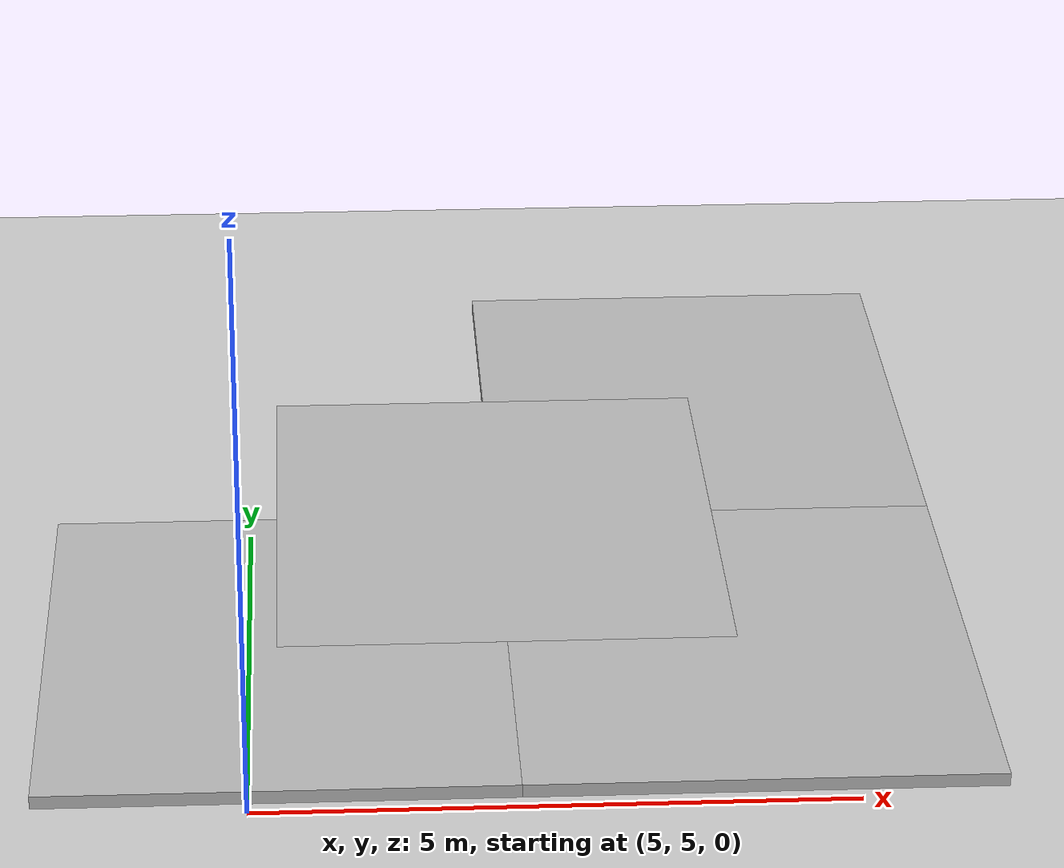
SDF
<sdf version="1.6">
 <world name="default">
  <include><uri>model://ground_plane</uri></include>
  <include><uri>model://sun</uri></include>
  <model name="mud_box_0_clone">
   <static>1</static>
   <link name="link">
    <collision name="collision"><geometry><box><size>8 10 0.2</size></box></geometry></collision>
    <visual name="visual_1">
     <cast_shadows>0</cast_shadows>
     <geometry><box><size>4 5 0.2</size></box></geometry>
     <material>
      <script>
       <uri>model://mud_box/materials/scripts</uri>
       <uri>model://mud_box/materials/textures</uri>
       <name>vrc/mud</name>
      </script>
     </material>
    </visual>
    <visual name="visual_2">
     <pose>2 2.5 0 0 -0 0</pose>
     <cast_shadows>0</cast_shadows>
     <geometry><box><size>4 5 0.2</size></box></geometry>
     <material>
      <script>
       <uri>model://mud_box/materials/scripts</uri>
       <uri>model://mud_box/materials/textures</uri>
       <name>vrc/mud</name>
      </script>
     </material>
    </visual>
    <visual name="visual_3">
     <pose>2 -2.5 0 0 -0 0</pose>
     <cast_shadows>0</cast_shadows>
     <geometry><box><size>4 5 0.2</size></box></geometry>
     <material>
      <script>
       <uri>model://mud_box/materials/scripts</uri>
       <uri>model://mud_box/materials/textures</uri>
       <name>vrc/mud</name>
      </script>
     </material>
    </visual>
    <visual name="visual_4">
     <pose>-2 -2.5 0 0 -0 0</pose>
     <cast_shadows>0</cast_shadows>
     <geometry><box><size>4 5 0.2</size></box></geometry>
     <material>
      <script>
       <uri>model://mud_box/materials/scripts</uri>
       <uri>model://mud_box/materials/textures</uri>
       <name>vrc/mud</name>
      </script>
     </material>
    </visual>
   </link>
   <pose>7.23243 10.1706 0 0 -0 0</pose>
  </model>
 </world>
</sdf>
